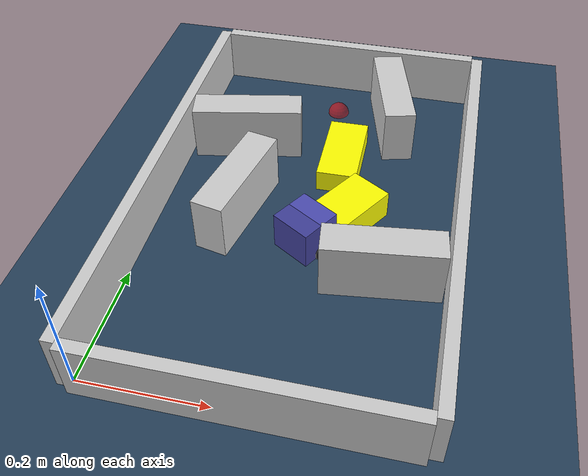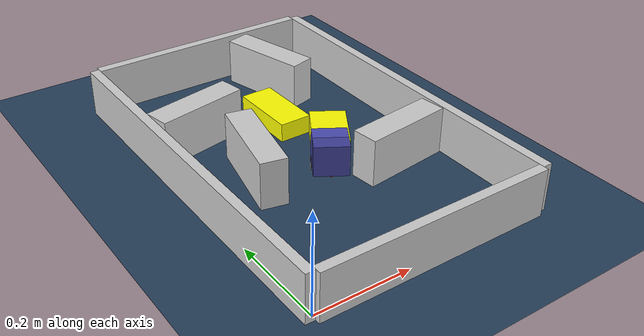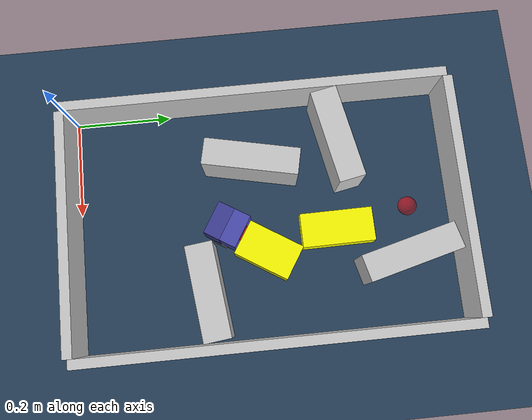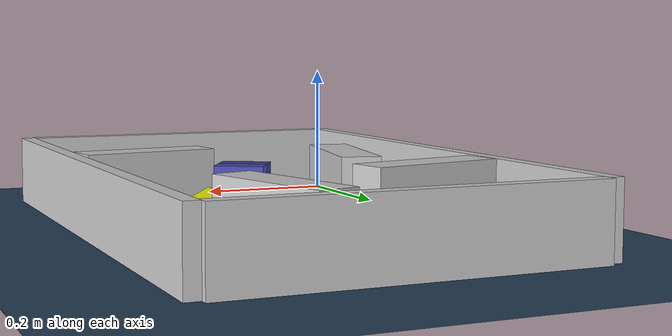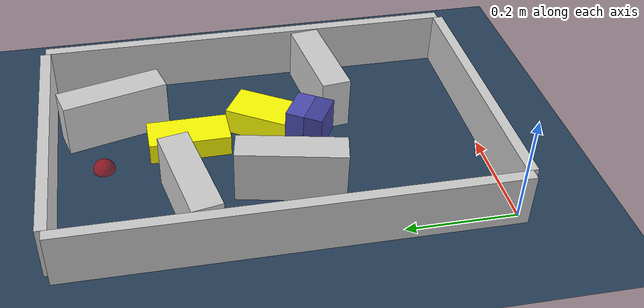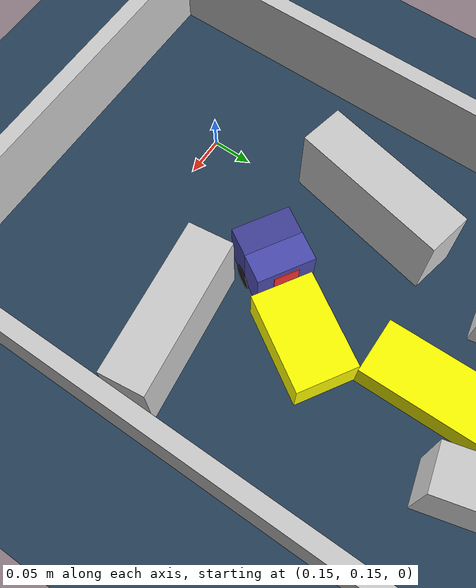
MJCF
<?xml version='1.0' encoding='utf-8'?>
<mujoco model="real_buildable">
  <compiler angle="degree" />
  <option timestep="0.002" integrator="implicitfast" iterations="100" cone="elliptic" />
  <default>
    <geom density="1" />
  </default>
  <asset>
    <texture builtin="gradient" height="3072" rgb1="0.3 0.5 0.7" rgb2="0 0 0" type="skybox" width="512" />
    <texture builtin="checker" height="300" mark="edge" markrgb="0.8 0.8 0.8" name="groundplane" rgb1="0.2 0.3 0.4" rgb2="0.1 0.2 0.3" type="2d" width="300" />
    <material name="groundplane" reflectance="0.2" texrepeat="5 5" texture="groundplane" texuniform="true" />
  </asset>
  <worldbody>
    <light dir="0 0 -1" directional="true" pos="0 0 1.5" />
    <geom name="floor" type="plane" condim="4" friction="0.5 0.005 0.001" material="groundplane" size="0 0 0.05" />
    <body name="walls">
      <geom name="wall_boundary_left" type="box" condim="4" friction="1.0 0.005 0.0001" rgba="0.8 0.8 0.8 1" pos="-0.010000 0.387500 0.050000" euler="0 0 0.000000" size="0.010000 0.397500 0.050000" />
      <geom name="wall_boundary_right" type="box" condim="4" friction="1.0 0.005 0.0001" rgba="0.8 0.8 0.8 1" pos="0.500000 0.387500 0.050000" euler="0 0 0.000000" size="0.010000 0.397500 0.050000" />
      <geom name="wall_boundary_bottom" type="box" condim="4" friction="1.0 0.005 0.0001" rgba="0.8 0.8 0.8 1" pos="0.245000 -0.010000 0.050000" euler="0 0 0.000000" size="0.245000 0.010000 0.050000" />
      <geom name="wall_boundary_top" type="box" condim="4" friction="1.0 0.005 0.0001" rgba="0.8 0.8 0.8 1" pos="0.245000 0.785000 0.050000" euler="0 0 0.000000" size="0.245000 0.010000 0.050000" />
      <geom name="wall_inner_1" type="box" condim="4" friction="1.0 0.005 0.0001" rgba="0.8 0.8 0.8 1" pos="0.390000 0.262000 0.050000" euler="0 0 7.000000" size="0.095000 0.027500 0.050000" />
      <geom name="wall_inner_2" type="box" condim="4" friction="1.0 0.005 0.0001" rgba="0.8 0.8 0.8 1" pos="0.131000 0.369000 0.050000" euler="0 0 78.000000" size="0.097500 0.027500 0.050000" />
      <geom name="wall_inner_3" type="box" condim="4" friction="1.0 0.005 0.0001" rgba="0.8 0.8 0.8 1" pos="0.101000 0.547000 0.050000" euler="0 0 11.200000" size="0.097500 0.027500 0.050000" />
      <geom name="wall_inner_4" type="box" condim="4" friction="1.0 0.005 0.0001" rgba="0.8 0.8 0.8 1" pos="0.352000 0.664000 0.050000" euler="0 0 104.700000" size="0.097500 0.027500 0.050000" />
    </body>
    <body name="car" pos="0.26050138760022529 0.30857777948856213 0.01" quat="0.87213304155527671 0 0 0.48926879915598748">
      <freejoint name="car_freejoint" />
      <inertial pos="0 0 0.0375" mass="0.35" diaginertia="0.000266 0.000266 0.000286" />
      <geom name="front_chassis_collision" type="box" pos="0.0175 0 0.0375" size="0.0175 0.035 0.0325" rgba="0.3 0.3 0.7 1" />
      <geom name="rear_chassis_collision" type="box" pos="-0.0175 0 0.0375" size="0.0175 0.035 0.0325" rgba="0.25 0.25 0.6 1" />
      <geom name="front_marker" type="box" pos="0.034 0 0.0505" size="0.002 0.015 0.01" rgba="1 0.2 0.2 1" contype="0" conaffinity="0" />
      <body name="rear_support_body" pos="-0.03 0 0.0025">
        <joint name="rear_caster_joint" type="ball" damping="0.0001" />
        <inertial pos="0 0 0" mass="0.025" diaginertia="0.000001 0.000001 0.000001" />
        <geom name="rear_support" type="sphere" pos="0 0 0" size="0.0025" friction="0 0 0" rgba="0.7 0.1 0.1 1" />
      </body>
      <body name="front_support_body" pos="0.03 0 0.0025">
        <joint name="front_caster_joint" type="ball" damping="0.0001" />
        <inertial pos="0 0 0" mass="0.025" diaginertia="0.000001 0.000001 0.000001" />
        <geom name="front_support" type="sphere" pos="0 0 0" size="0.0025" friction="0 0 0" rgba="0.1 0.7 0.1 1" />
      </body>
      <body name="left_wheel" pos="0 0.0375 0.015">
        <inertial pos="0 0 0" mass="0.05" diaginertia="0.000003 0.000006 0.000003" />
        <joint name="left_wheel_joint" type="hinge" axis="0 1 0" damping="0.01" armature="0.0001" />
        <geom name="left_wheel_collision" type="cylinder" size="0.015 0.0005" euler="90 0 0" rgba="0.1 0.1 0.1 1" />
      </body>
      <body name="right_wheel" pos="0 -0.0375 0.015">
        <inertial pos="0 0 0" mass="0.05" diaginertia="0.000003 0.000006 0.000003" />
        <joint name="right_wheel_joint" type="hinge" axis="0 1 0" damping="0.01" armature="0.0001" />
        <geom name="right_wheel_collision" type="cylinder" size="0.015 0.0005" euler="90 0 0" rgba="0.1 0.1 0.1 1" />
      </body>
    </body>
    <body name="obstacle_0_movable">
      <geom name="obstacle_0_movable" condim="4" pos="0.31587500014484082 0.38710423503695335 0.025000000000000001" friction="1 0.005 0.0001" rgba="1 1 0 1" size="0.037500 0.060000 0.025000" type="box" mass="0.1" quat="0.96125776263383511 0 0 -0.27565107251050824" />
      <joint type="free" />
    </body>
    <body name="obstacle_1_movable">
      <geom name="obstacle_1_movable" condim="4" pos="0.28159565997029035 0.53242921730897108 0.02" friction="1 0.005 0.0001" rgba="1 1 0 1" size="0.035000 0.075000 0.020000" type="box" mass="0.1" quat="0.99998336078297601 0 0 0.0057687223181881386" />
      <joint type="free" />
    </body>
    <site name="goal" type="sphere" pos="0.245000 0.691000 0.0" size="0.02" rgba="1 0 0 0.5" />
  </worldbody>
  <actuator>
    <velocity name="left_wheel_drive" joint="left_wheel_joint" ctrlrange="-25 25" kv="0.75" forcerange="-0.5 0.5" />
    <velocity name="right_wheel_drive" joint="right_wheel_joint" ctrlrange="-25 25" kv="0.75" forcerange="-0.5 0.5" />
  </actuator>
</mujoco>
